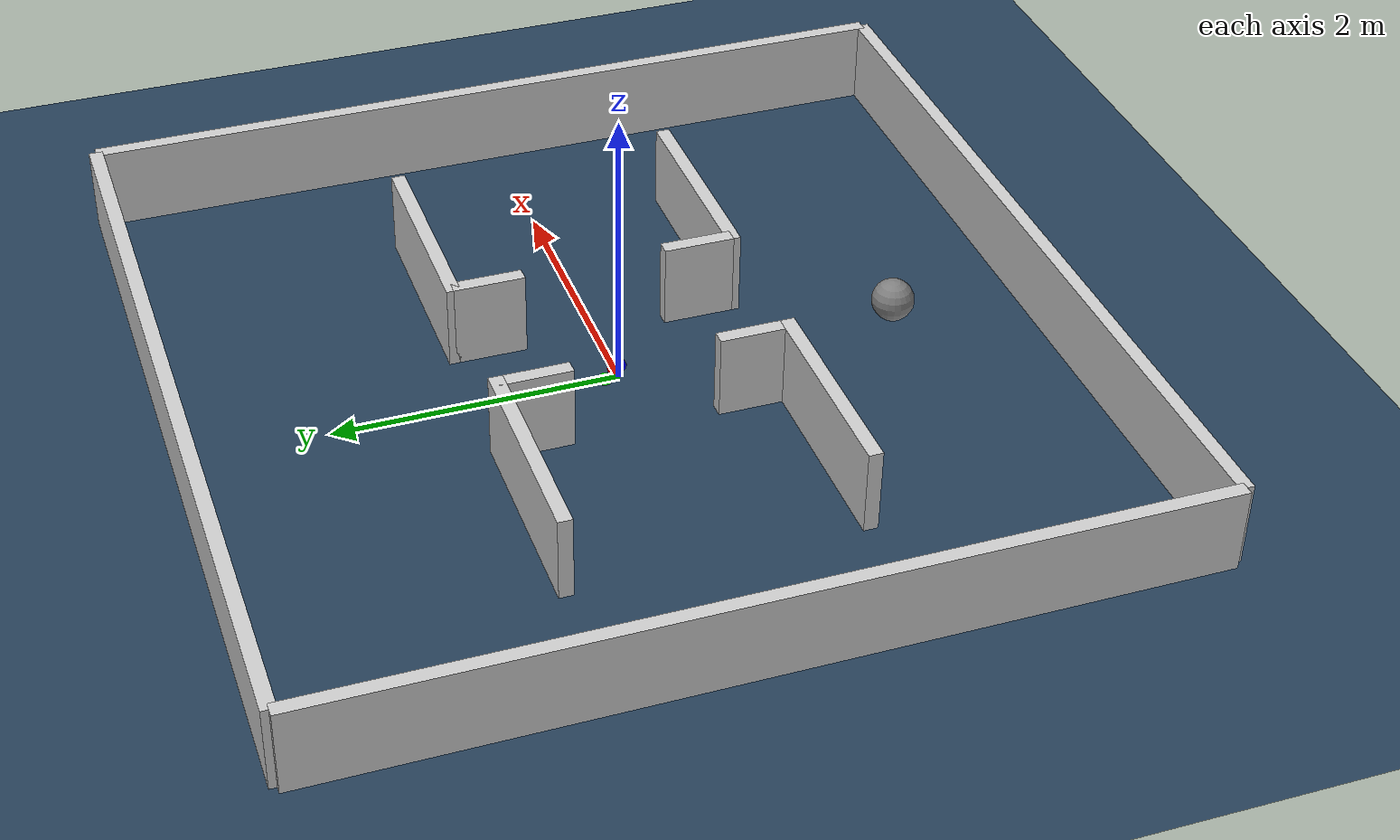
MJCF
<?xml version="1.0" ?>
<mujoco model="generated_environment">
  <option timestep="0.01" integrator="RK4" cone="elliptic"/>
  <default>
    <geom density="1"/>
  </default>
  <asset>
    <texture builtin="gradient" height="3072" rgb1="0.3 0.5 0.7" rgb2="0 0 0" type="skybox" width="512"/>
    <texture builtin="checker" height="300" mark="edge" markrgb="0.8 0.8 0.8" name="groundplane" rgb1="0.2 0.3 0.4" rgb2="0.1 0.2 0.3" type="2d" width="300"/>
    <material name="groundplane" reflectance="0.2" texrepeat="5 5" texture="groundplane" texuniform="true"/>
    <material name="robot" rgba="0.0 1.0 0.0 1"/>
  </asset>
  <worldbody>
    <light dir="0 0 -1" directional="true" pos="0 0 1.5"/>
    <geom condim="4" friction="1.0 0.005 0.001" material="groundplane" name="floor" size="0 0 0.05" type="plane"/>

    <body name="robot">
      <joint name="joint_x" type="slide" pos="0 0 0" axis="1 0 0"/>
      <joint name="joint_y" type="slide" pos="0 0 0" axis="0 1 0"/>
      <geom name="robot" type="sphere" pos="0 -2. 0.2" size="0.15 0.15 0.15" mass="5.0" friction="1.0 0.005 0.0001" condim="4"/>
    </body>

    <body name="walls">
      <geom name="wall_1" condim="4" pos="-3 0 0.3" rgba="0.8 0.8 0.8 1" size="0.05 3 0.3" type="box"/>
      <geom name="wall_2" condim="4" pos="3 0 0.3" rgba="0.8 0.8 0.8 1" size="0.05 3 0.3" type="box"/>
      <geom name="wall_3" condim="4" pos="0 -3 0.3" rgba="0.8 0.8 0.8 1" size="3 0.05 0.3" type="box"/>
      <geom name="wall_4" condim="4" pos="0 3 0.3" rgba="0.8 0.8 0.8 1" size="3 0.05 0.3" type="box"/>

      <geom name="wall_5" condim="4" pos="-1.25 -1 0.3" rgba="0.8 0.8 0.8 1" size="0.75 0.05 0.3" type="box"/>
      <geom name="wall_6" condim="4" pos="1.25 -1 0.3" rgba="0.8 0.8 0.8 1" size="0.75 0.05 0.3" type="box"/>

      <geom name="wall_7" condim="4" pos="-1.25 1 0.3" rgba="0.8 0.8 0.8 1" size="0.75 0.05 0.3" type="box"/>
      <geom name="wall_8" condim="4" pos="1.25 1 0.3" rgba="0.8 0.8 0.8 1" size="0.75 0.05 0.3" type="box"/>

      <geom name="wall_9" condim="4" pos="0.55 -0.75 0.3" rgba="0.8 0.8 0.8 1" size="0.05 0.25 0.3" type="box"/>
      <geom name="wall_10" condim="4" pos="0.55 0.75 0.3" rgba="0.8 0.8 0.8 1" size="0.05 0.25 0.3" type="box"/>

      <geom name="wall_11" condim="4" pos="-0.55 -0.75 0.3" rgba="0.8 0.8 0.8 1" size="0.05 0.25 0.3" type="box"/>
      <geom name="wall_12" condim="4" pos="-0.55 0.75 0.3" rgba="0.8 0.8 0.8 1" size="0.05 0.25 0.3" type="box"/>

    </body>

    <site name="origin_x" pos="0.1 0 0.0" rgba="1 0 0 1" size="0.05" type="sphere"/>
    <site name="origin_y" pos="0 0.1 0" rgba="0 1 0 1" size="0.05" type="sphere"/>
    <site name="origin_z" pos="0 0 0.1" rgba="0 0 1 1" size="0.05" type="sphere"/>
  </worldbody>
</mujoco>
